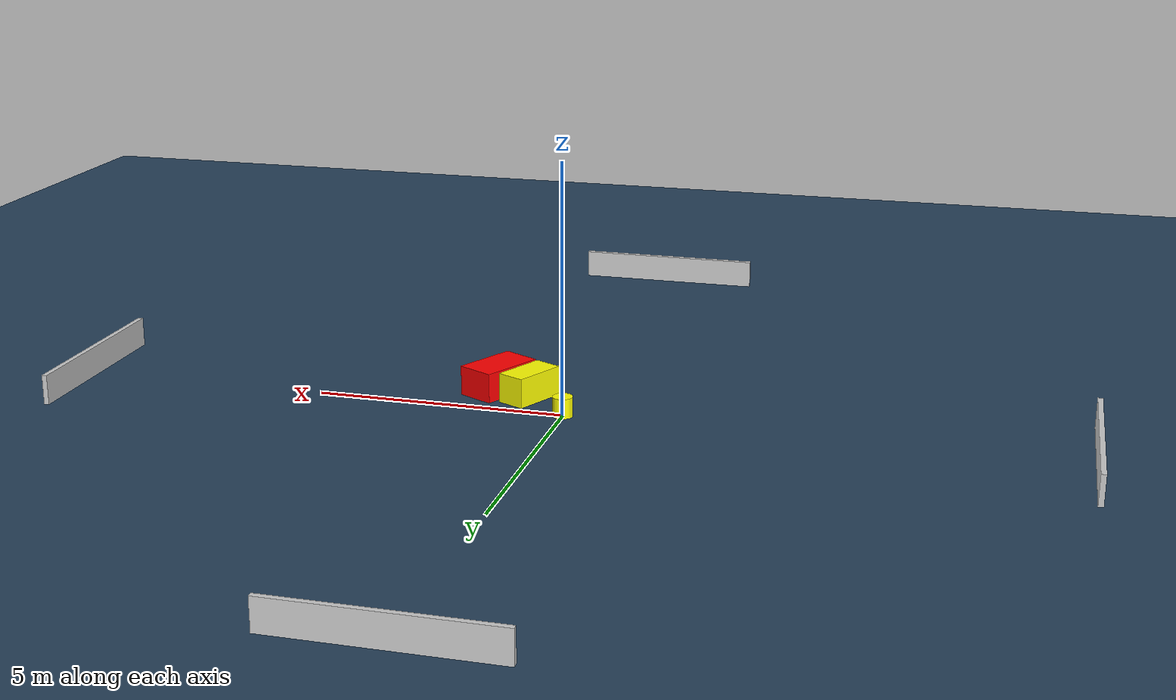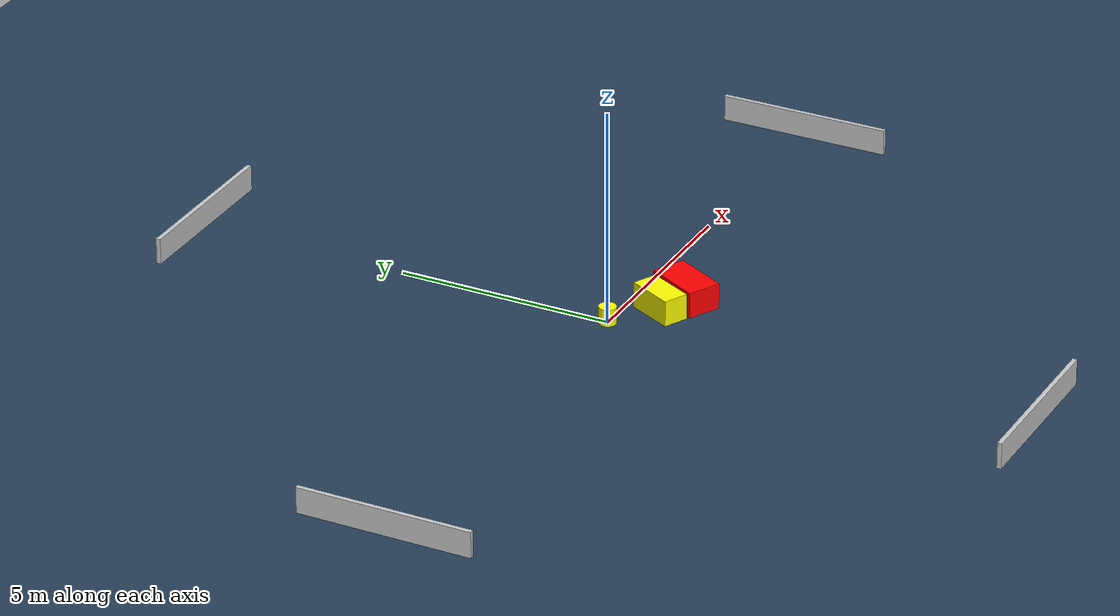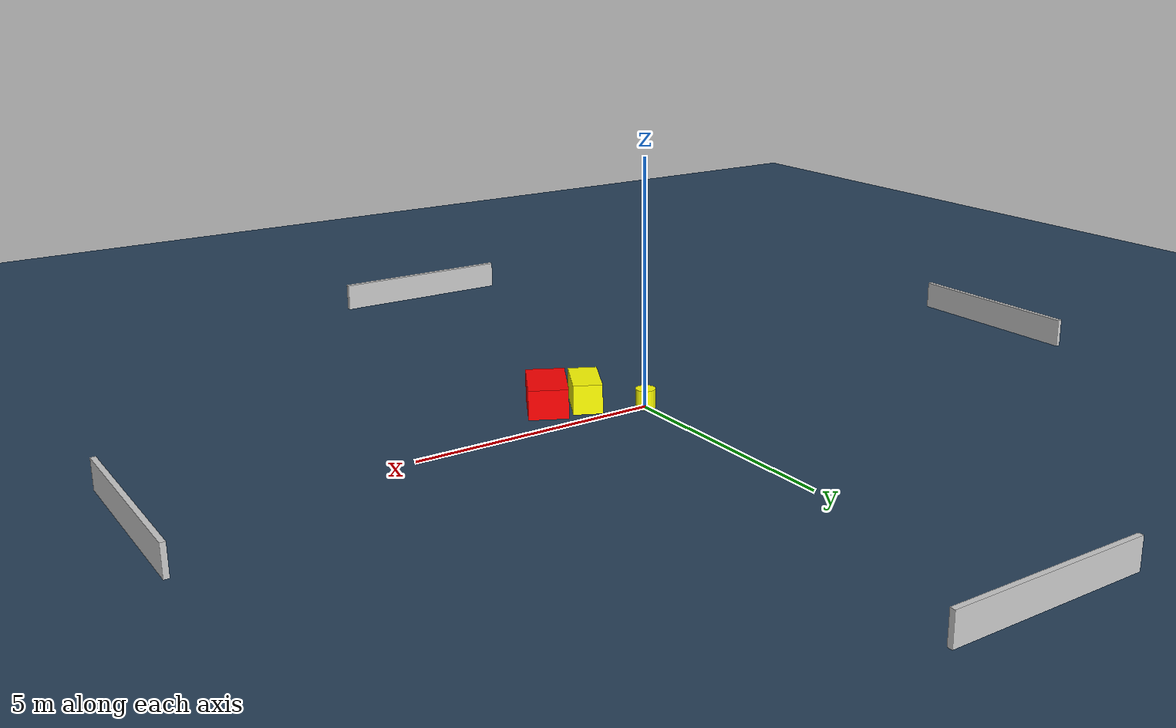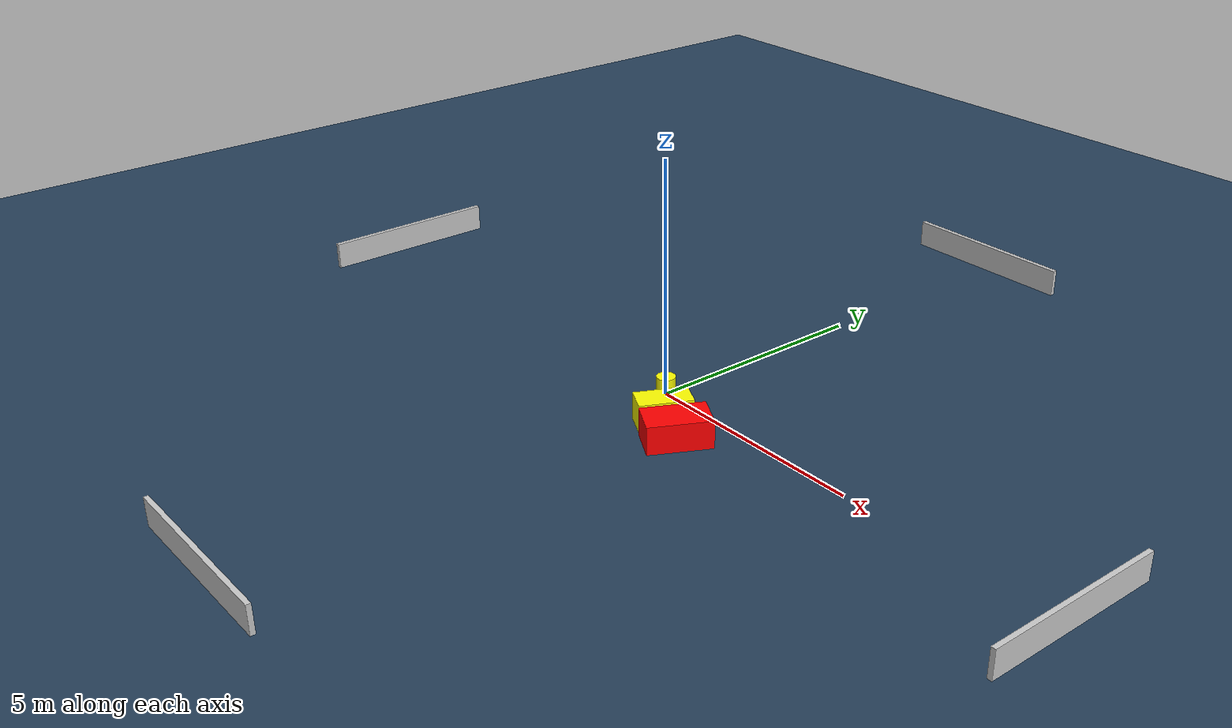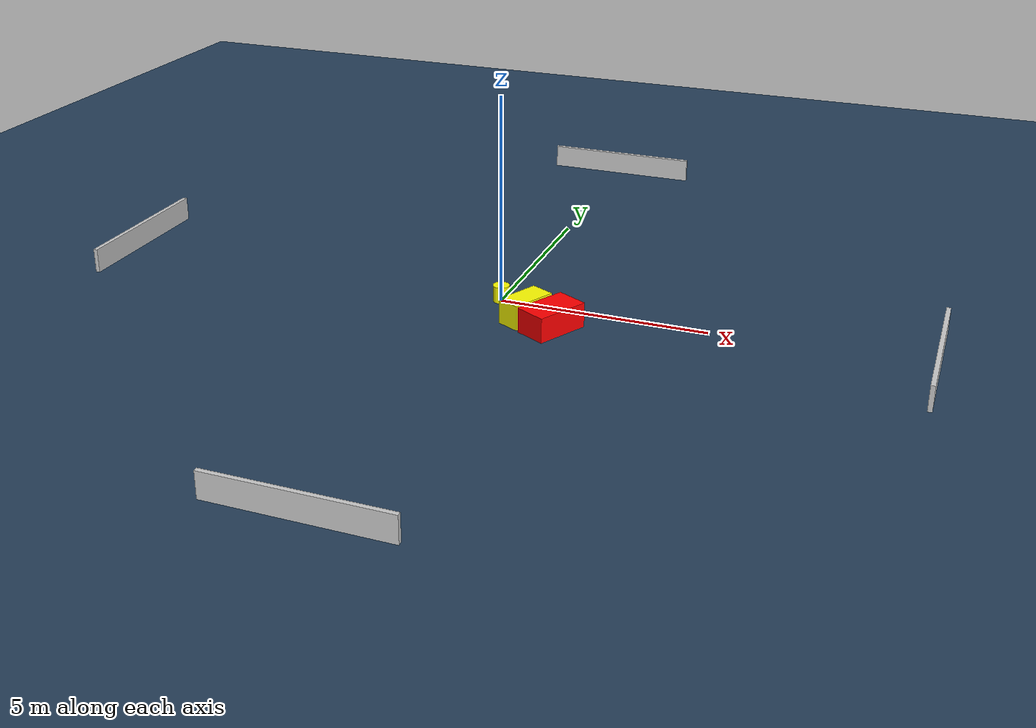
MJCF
<?xml version="1.0" ?>
<mujoco model="generated_environment">
  <option timestep="0.01" integrator="RK4" cone="elliptic"/>
  <default>
    <geom density="1"/>
  </default>
  <asset>
    <texture builtin="gradient" height="3072" name="skybox" rgb1="0.3 0.5 0.7" rgb2="0 0 0" type="skybox" width="512"/>
    <texture builtin="checker" height="300" name="groundplane" rgb1="0.2 0.3 0.4" rgb2="0.1 0.2 0.3" type="2d" width="300"/>
    <material name="groundplane" reflectance="0.2" texrepeat="5 5" texture="groundplane"/>
  </asset>
  <worldbody>
    <light dir="0 0 -1" directional="true" pos="0 0 1.5"/>
    <geom condim="3" friction="0.5 0.005 0.001" material="groundplane" name="floor" pos="0 0 0" size="0 0 0.05" type="plane"/>
    <body name="walls">
      <geom name="wall_1" condim="4" pos="-10.0 0.0 0.3" rgba="0.800000011920929 0.800000011920929 0.800000011920929 1.0" size="0.05 2.0 0.3" type="box"/>
      <geom name="wall_2" condim="4" pos="10.0 0.0 0.3" rgba="0.800000011920929 0.800000011920929 0.800000011920929 1.0" size="0.05 2.0 0.3" type="box"/>
      <geom name="wall_3" condim="4" pos="0.0 -10.0 0.3" rgba="0.800000011920929 0.800000011920929 0.800000011920929 1.0" size="2.0 0.05 0.3" type="box"/>
      <geom name="wall_4" condim="4" pos="0.0 10.0 0.3" rgba="0.800000011920929 0.800000011920929 0.800000011920929 1.0" size="2.0 0.05 0.3" type="box"/>
    </body>
    <body name="robot">
      <joint name="joint_x" type="slide" pos="0 0 0" axis="1 0 0"/>
      <joint name="joint_y" type="slide" pos="0 0 0" axis="0 1 0"/>
      <geom name="robot" type="cylinder" pos="0.0 0.0 0.2" size="0.2 0.2 0.0" mass="5.0" friction="1.0 0.005 0.0001" condim="4" rgba="1.0 1.0 0.0 1.0"/>
    </body>
    <body name="obstacle_1_movable">
      <geom name="obstacle_1_movable" condim="4" pos="0.9020750258048097 -0.813316868117419 0.3" euler="0 0 243.59579799261027" friction="0.0 0.005 0.001" rgba="1.0 1.0 0.0 1.0" size="0.5554429105277343 0.2913236096788162 0.3" type="box" mass="0.1"/>
      <joint type="free"/>
    </body>
    <body name="obstacle_2_static">
      <geom name="obstacle_2_static" condim="4" pos="1.6238529935795196 -1.0862899596692248 0.3" euler="0 0 332.05449228203537" friction="0.0 0.005 0.001" rgba="1.0 0.0 0.0 1.0" size="0.3937665668539383 0.6622340330307084 0.3" type="box"/>
    </body>
  </worldbody>
  <actuator>
    <motor name="actuator_x" joint="joint_x" gear="1" ctrlrange="-1 1"/>
    <motor name="actuator_y" joint="joint_y" gear="1" ctrlrange="-1 1"/>
  </actuator>
</mujoco>
